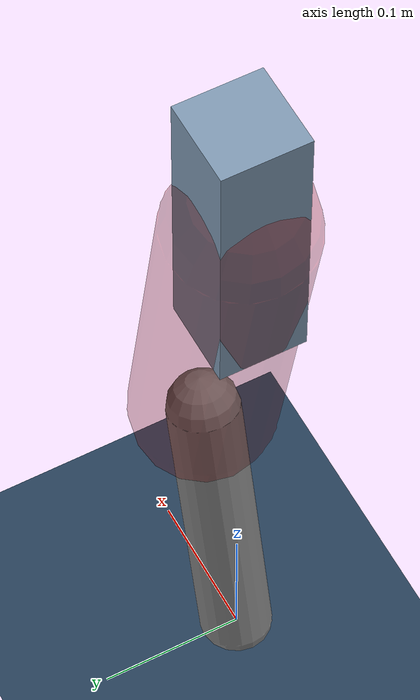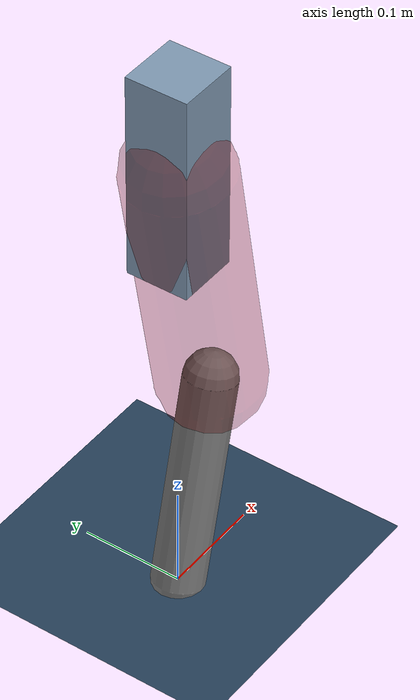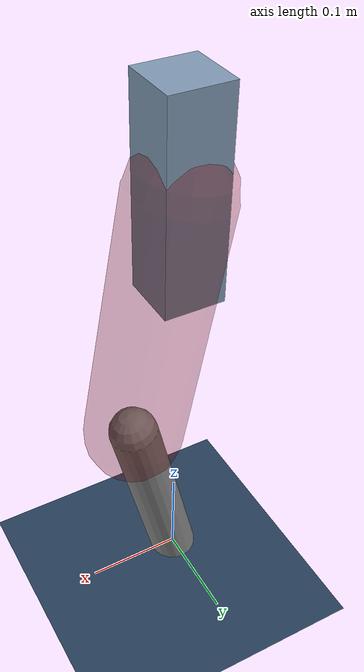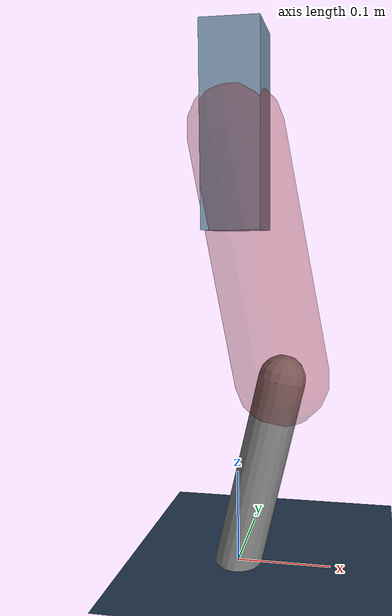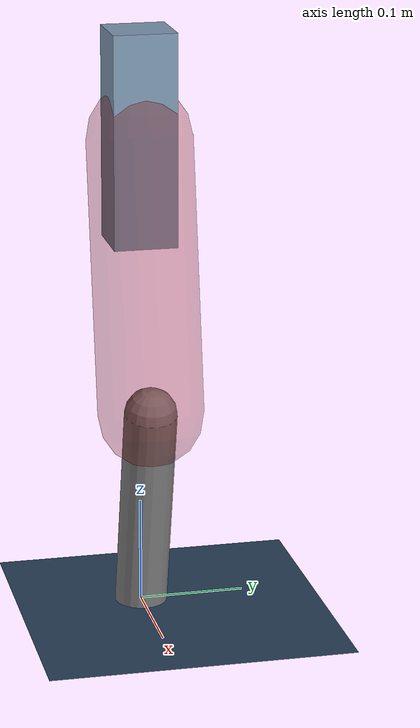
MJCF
<mujoco model="Hopper2D">
	<compiler inertiafromgeom="true" angle="radian" />
	<option timestep="0.001" integrator="implicit" cone="elliptic" solver="Newton" tolerance="1e-10" />

	<default>
		<geom contype="1" conaffinity="1" condim="3" friction="2 0.005 0.0001" solref="0.005 1" />
		<joint limited="true" damping="0.1" />
	</default>

	<asset>
		<texture name="skybox" type="skybox" builtin="gradient" rgb1=".4 .6 .8" rgb2="0 0 0" width="800" height="800" />
		<texture name="grid" type="2d" builtin="checker" rgb1=".1 .2 .3" rgb2=".2 .3 .4" width="300" height="300" mark="edge" markrgb=".2 .3 .4" />
		<material name="ground" texture="grid" texrepeat="1 1" texuniform="true" reflectance="0.1" />
		<material name="leg" rgba="0.5 0.6 0.7 1" />
	</asset>

	<worldbody>

		<geom name="floor" type="plane" size="5 5 0.25" material="ground" />

		<light directional="false" diffuse="0.8 0.8 0.8" specular="0.3 0.3 0.3" pos="0 0 2" dir="0 0 -1" />
		<light mode="targetbodycom" target="base" directional="false" diffuse="0.8 0.8 0.8" specular="0.3 0.3 0.3" pos="0 0 2" dir="0 0 -1" />

		<camera name="fixed" pos="0 -2 1" xyaxes="1 0 0 0 0 1" />
		<camera name="tracking" mode="trackcom" pos="0 -3 1" />

		<body name="root" pos="0 0 0.45785459674731227">
			<joint name="slide_x" type="slide" axis="1 0 0" range="-100 100" />
			<joint name="slide_z" type="slide" axis="0 0 1" range="0 10" />

			<body name="base" pos="0 0 0">
				<geom name="torso" type="box" size="0.03 0.03 0.1" mass="2.427" material="leg" />

				<body name="link1" pos="0 0 0" euler="0 1.3843090905551145 0">
					<joint type="hinge" axis="0 -1 0" pos="0 0 0" name="hinge1" limited="true" range="-3.14 3.14" stiffness="0" damping="0.1" />
					<geom name="thigh" type="capsule" fromto="0 0 0 0.2580234537692403 0 0" size="0.05" rgba="0.5 0 0 0.3" mass="0.8772609798000247" />

					<body name="link2" pos="0.2580234537692403 0 0" euler="0 0.41650131654871925 0">
						<joint type="hinge" axis="0 -1 0" pos="0 0 0" name="hinge2" limited="true" range="-3.14 3.14" stiffness="0" damping="0.1" />
						<geom name="shank" type="capsule" fromto="0 0 0 0.20983114297807198 0 0" size="0.025" mass="0.4091649143824576" />

					</body>
				</body>
			</body>
		</body>
	</worldbody>

	<actuator>
		<motor name="torque1" joint="hinge1" ctrlrange="-67.3236036804287 67.3236036804287" ctrllimited="true" gear="1" />
		<motor name="torque2" joint="hinge2" ctrlrange="-93.14410235146228 93.14410235146228" ctrllimited="true" gear="1" />
	</actuator>
</mujoco>
